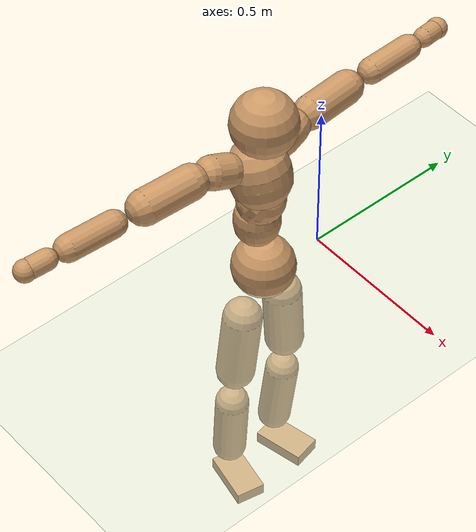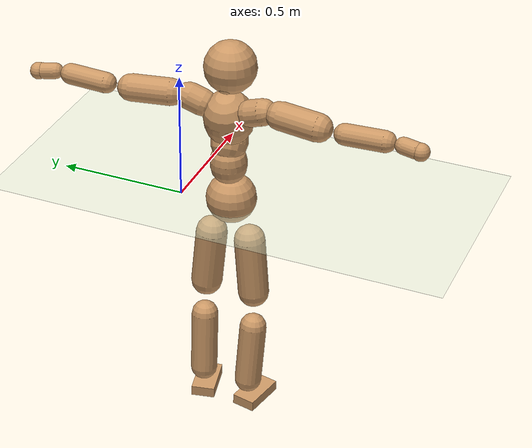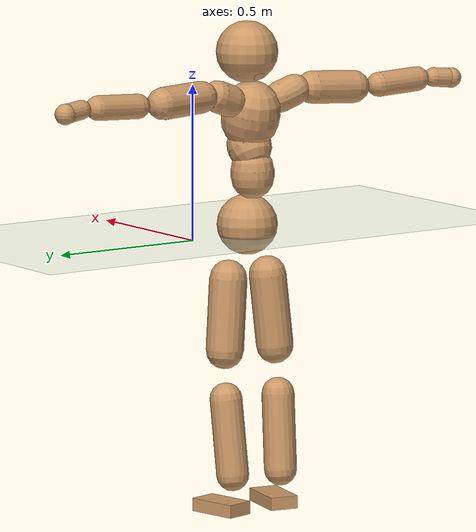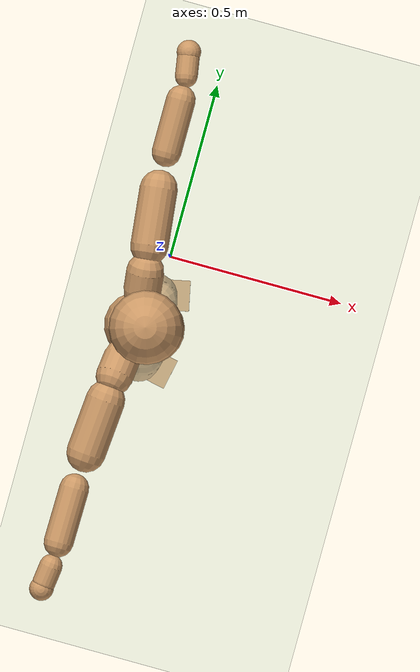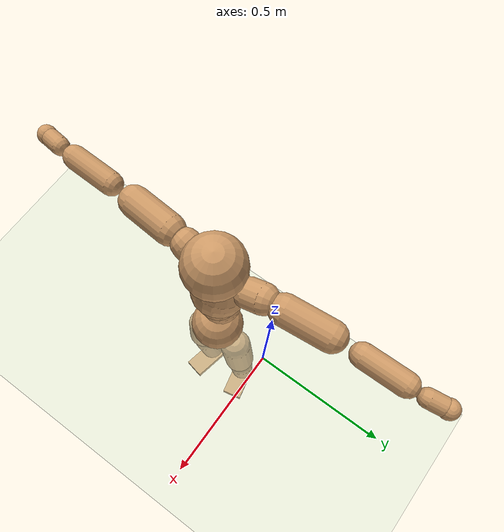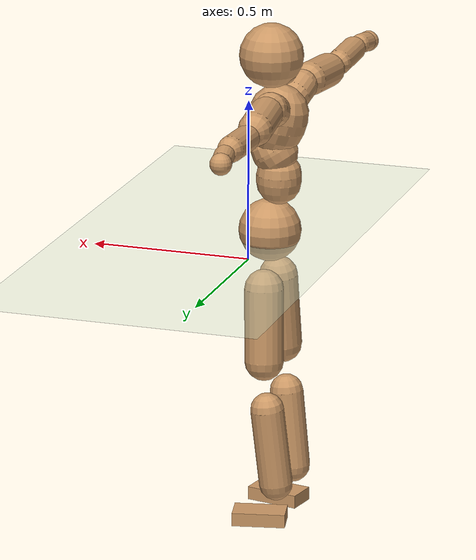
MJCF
<mujoco model="humanoid">
  <compiler coordinate="local"/>
  <default>
    <joint damping="0.0" armature="0.01" stiffness="0.0" limited="true"/>
    <geom conaffinity="1" condim="3" contype="7" margin="0.001" rgba="0.8 0.6 .4 1"/>
  </default>
  <asset>
    <texture type="skybox" builtin="gradient" rgb1=".4 .5 .6" rgb2="0 0 0" width="100" height="100"/>
    <texture builtin="flat" height="1278" mark="cross" markrgb="1 1 1" name="texgeom" random="0.01" rgb1="0.8 0.6 0.4" rgb2="0.8 0.6 0.4" type="cube" width="127"/>
    <texture builtin="checker" height="100" name="texplane" rgb1="0 0 0" rgb2="0.8 0.8 0.8" type="2d" width="100"/>
    <material name="MatPlane" reflectance="0.5" shininess="1" specular="1" texrepeat="60 60" texture="texplane"/>
    <material name="geom" texture="texgeom" texuniform="true"/>
  </asset>
  <worldbody>
    <light cutoff="100" diffuse="1 1 1" dir="-0 0 -1.3" directional="true" exponent="1" pos="0 0 1.3" specular=".1 .1 .1"/>
    <geom conaffinity="1" condim="3" name="floor" pos="0 0 0" rgba="0.8 0.9 0.8 1" size="100 100 .2" type="plane" material="MatPlane"/>
    <body name="Pelvis" pos="-0.0006 -0.211 0.0341">
      <freejoint name="Pelvis"/>
      <geom type="sphere" contype="1" conaffinity="1" density="500" size="0.0981" pos="0.0000 0.0000 0.0000" name="Pelvis"/>
      <body name="L_Hip" pos="-0.0041 0.0729 -0.093">
        <joint name="L_Hip_x" type="hinge" pos="0 0 0" axis="1 0 0" stiffness="800" damping="80" armature="0.02" range="-180.0000 180.0000"/>
        <joint name="L_Hip_y" type="hinge" pos="0 0 0" axis="0 1 0" stiffness="800" damping="80" armature="0.02" range="-180.0000 180.0000"/>
        <joint name="L_Hip_z" type="hinge" pos="0 0 0" axis="0 0 1" stiffness="800" damping="80" armature="0.02" range="-180.0000 180.0000"/>
        <geom type="capsule" contype="1" conaffinity="1" density="500" fromto="-0.0025 0.0062 -0.0763 -0.0099 0.0250 -0.3054" size="0.0615" name="L_Hip"/>
        <body name="L_Knee" pos="-0.0124 0.0312 -0.3817">
          <joint name="L_Knee_x" type="hinge" pos="0 0 0" axis="1 0 0" stiffness="800" damping="80" armature="0.02" range="-180.0000 180.0000"/>
          <joint name="L_Knee_y" type="hinge" pos="0 0 0" axis="0 1 0" stiffness="800" damping="80" armature="0.02" range="-180.0000 180.0000"/>
          <joint name="L_Knee_z" type="hinge" pos="0 0 0" axis="0 0 1" stiffness="800" damping="80" armature="0.02" range="-180.0000 180.0000"/>
          <geom type="capsule" contype="1" conaffinity="1" density="500" fromto="-0.0090 -0.0024 -0.0817 -0.0362 -0.0094 -0.3267" size="0.053" name="L_Knee"/>
          <body name="L_Ankle" pos="-0.0452 -0.0118 -0.4083">
            <joint name="L_Ankle_x" type="hinge" pos="0 0 0" axis="1 0 0" stiffness="800" damping="80" armature="0.02" range="-180.0000 180.0000"/>
            <joint name="L_Ankle_y" type="hinge" pos="0 0 0" axis="0 1 0" stiffness="800" damping="80" armature="0.02" range="-180.0000 180.0000"/>
            <joint name="L_Ankle_z" type="hinge" pos="0 0 0" axis="0 0 1" stiffness="800" damping="80" armature="0.02" range="-180.0000 180.0000"/>
            <geom type="box" contype="1" conaffinity="1" density="500" pos="0.0587 0.0125 -0.0291" size="0.0836 0.0466 0.0213" quat="0.9945 0.0000 0.0000 0.1048" name="L_Ankle"/>
            <body name="L_Toe" pos="0.1173 0.025 -0.0582">
              <joint name="L_Toe_x" type="hinge" pos="0 0 0" axis="1 0 0" stiffness="500" damping="50" armature="0.02" range="-180.0000 180.0000"/>
              <joint name="L_Toe_y" type="hinge" pos="0 0 0" axis="0 1 0" stiffness="500" damping="50" armature="0.02" range="-180.0000 180.0000"/>
              <joint name="L_Toe_z" type="hinge" pos="0 0 0" axis="0 0 1" stiffness="500" damping="50" armature="0.02" range="-180.0000 180.0000"/>
              <geom type="box" contype="1" conaffinity="1" density="500" pos="0.0000 0.0000 0.0282" size="0.001 0.0023 0.001" quat="0.9938 0.0000 0.0000 0.1110" name="L_Toe"/>
            </body>
          </body>
        </body>
      </body>
      <body name="R_Hip" pos="-0.0004 -0.0705 -0.0933">
        <joint name="R_Hip_x" type="hinge" pos="0 0 0" axis="1 0 0" stiffness="800" damping="80" armature="0.02" range="-180.0000 180.0000"/>
        <joint name="R_Hip_y" type="hinge" pos="0 0 0" axis="0 1 0" stiffness="800" damping="80" armature="0.02" range="-180.0000 180.0000"/>
        <joint name="R_Hip_z" type="hinge" pos="0 0 0" axis="0 0 1" stiffness="800" damping="80" armature="0.02" range="-180.0000 180.0000"/>
        <geom type="capsule" contype="1" conaffinity="1" density="500" fromto="-0.0028 -0.0076 -0.0774 -0.0112 -0.0302 -0.3096" size="0.0607" name="R_Hip"/>
        <body name="R_Knee" pos="-0.014 -0.0378 -0.387">
          <joint name="R_Knee_x" type="hinge" pos="0 0 0" axis="1 0 0" stiffness="800" damping="80" armature="0.02" range="-180.0000 180.0000"/>
          <joint name="R_Knee_y" type="hinge" pos="0 0 0" axis="0 1 0" stiffness="800" damping="80" armature="0.02" range="-180.0000 180.0000"/>
          <joint name="R_Knee_z" type="hinge" pos="0 0 0" axis="0 0 1" stiffness="800" damping="80" armature="0.02" range="-180.0000 180.0000"/>
          <geom type="capsule" contype="1" conaffinity="1" density="500" fromto="-0.0087 0.0029 -0.0819 -0.0349 0.0115 -0.3275" size="0.0531" name="R_Knee"/>
          <body name="R_Ankle" pos="-0.0436 0.0144 -0.4093">
            <joint name="R_Ankle_x" type="hinge" pos="0 0 0" axis="1 0 0" stiffness="800" damping="80" armature="0.02" range="-180.0000 180.0000"/>
            <joint name="R_Ankle_y" type="hinge" pos="0 0 0" axis="0 1 0" stiffness="800" damping="80" armature="0.02" range="-180.0000 180.0000"/>
            <joint name="R_Ankle_z" type="hinge" pos="0 0 0" axis="0 0 1" stiffness="800" damping="80" armature="0.02" range="-180.0000 180.0000"/>
            <geom type="box" contype="1" conaffinity="1" density="500" pos="0.0606 -0.0123 -0.0246" size="0.0856 0.047 0.021" quat="0.9950 0.0000 0.0000 -0.1000" name="R_Ankle"/>
            <body name="R_Toe" pos="0.1212 -0.0246 -0.0492">
              <joint name="R_Toe_x" type="hinge" pos="0 0 0" axis="1 0 0" stiffness="500" damping="50" armature="0.02" range="-180.0000 180.0000"/>
              <joint name="R_Toe_y" type="hinge" pos="0 0 0" axis="0 1 0" stiffness="500" damping="50" armature="0.02" range="-180.0000 180.0000"/>
              <joint name="R_Toe_z" type="hinge" pos="0 0 0" axis="0 0 1" stiffness="500" damping="50" armature="0.02" range="-180.0000 180.0000"/>
              <geom type="box" contype="1" conaffinity="1" density="500" pos="0.0000 0.0000 0.0264" size="0.0009 0.0023 0.0011" quat="0.9959 0.0000 0.0000 -0.0906" name="R_Toe"/>
            </body>
          </body>
        </body>
      </body>
      <body name="Torso" pos="-0.0272 -0.0023 0.1076">
        <joint name="Torso_x" type="hinge" pos="0 0 0" axis="1 0 0" stiffness="1000" damping="100" armature="0.02" range="-180.0000 180.0000"/>
        <joint name="Torso_y" type="hinge" pos="0 0 0" axis="0 1 0" stiffness="1000" damping="100" armature="0.02" range="-180.0000 180.0000"/>
        <joint name="Torso_z" type="hinge" pos="0 0 0" axis="0 0 1" stiffness="1000" damping="100" armature="0.02" range="-180.0000 180.0000"/>
        <geom type="capsule" contype="1" conaffinity="1" density="500" fromto="-0.0013 0.0019 0.0740 -0.0009 0.0013 0.0493" size="0.070401" name="Torso"/>
        <body name="Spine" pos="-0.0022 0.0032 0.1233">
          <joint name="Spine_x" type="hinge" pos="0 0 0" axis="1 0 0" stiffness="1000" damping="100" armature="0.02" range="-180.0000 180.0000"/>
          <joint name="Spine_y" type="hinge" pos="0 0 0" axis="0 1 0" stiffness="1000" damping="100" armature="0.02" range="-180.0000 180.0000"/>
          <joint name="Spine_z" type="hinge" pos="0 0 0" axis="0 0 1" stiffness="1000" damping="100" armature="0.02" range="-180.0000 180.0000"/>
          <geom type="capsule" contype="1" conaffinity="1" density="500" fromto="0.0184 0.0013 0.0298 0.0123 0.0009 0.0199" size="0.07161" name="Spine"/>
          <body name="Chest" pos="0.0307 0.0022 0.0497">
            <joint name="Chest_x" type="hinge" pos="0 0 0" axis="1 0 0" stiffness="1000" damping="100" armature="0.02" range="-180.0000 180.0000"/>
            <joint name="Chest_y" type="hinge" pos="0 0 0" axis="0 1 0" stiffness="1000" damping="100" armature="0.02" range="-180.0000 180.0000"/>
            <joint name="Chest_z" type="hinge" pos="0 0 0" axis="0 0 1" stiffness="1000" damping="100" armature="0.02" range="-180.0000 180.0000"/>
            <geom type="capsule" contype="1" conaffinity="1" density="500" fromto="-0.0289 -0.0007 0.0924 -0.0193 -0.0005 0.0616" size="0.094116" name="Chest"/>
            <body name="Neck" pos="-0.0562 -0.002 0.2165">
              <joint name="Neck_x" type="hinge" pos="0 0 0" axis="1 0 0" stiffness="500" damping="50" armature="0.02" range="-180.0000 180.0000"/>
              <joint name="Neck_y" type="hinge" pos="0 0 0" axis="0 1 0" stiffness="500" damping="50" armature="0.02" range="-180.0000 180.0000"/>
              <joint name="Neck_z" type="hinge" pos="0 0 0" axis="0 0 1" stiffness="500" damping="50" armature="0.02" range="-180.0000 180.0000"/>
              <geom type="capsule" contype="1" conaffinity="1" density="500" fromto="0.0101 0.0005 0.0122 0.0405 0.0018 0.0487" size="0.039432" name="Neck"/>
              <body name="Head" pos="0.0506 0.0023 0.0608">
                <joint name="Head_x" type="hinge" pos="0 0 0" axis="1 0 0" stiffness="500" damping="50" armature="0.02" range="-180.0000 180.0000"/>
                <joint name="Head_y" type="hinge" pos="0 0 0" axis="0 1 0" stiffness="500" damping="50" armature="0.02" range="-180.0000 180.0000"/>
                <joint name="Head_z" type="hinge" pos="0 0 0" axis="0 0 1" stiffness="500" damping="50" armature="0.02" range="-180.0000 180.0000"/>
                <geom type="sphere" contype="1" conaffinity="1" density="500" size="0.0997" pos="0.0000 0.0000 0.0000" name="Head"/>
              </body>
            </body>
            <body name="L_Thorax" pos="-0.0421 0.0779 0.1234">
              <joint name="L_Thorax_x" type="hinge" pos="0 0 0" axis="1 0 0" stiffness="500" damping="50" armature="0.02" range="-180.0000 180.0000"/>
              <joint name="L_Thorax_y" type="hinge" pos="0 0 0" axis="0 1 0" stiffness="500" damping="50" armature="0.02" range="-180.0000 180.0000"/>
              <joint name="L_Thorax_z" type="hinge" pos="0 0 0" axis="0 0 1" stiffness="500" damping="50" armature="0.02" range="-180.0000 180.0000"/>
              <geom type="capsule" contype="1" conaffinity="1" density="500" fromto="-0.0017 0.0169 0.0063 -0.0070 0.0676 0.0251" size="0.0516" name="L_Thorax"/>
              <body name="L_Shoulder" pos="-0.0087 0.0845 0.0313">
                <joint name="L_Shoulder_x" type="hinge" pos="0 0 0" axis="1 0 0" stiffness="500" damping="50" armature="0.02" range="-720.0000 720.0000"/>
                <joint name="L_Shoulder_y" type="hinge" pos="0 0 0" axis="0 1 0" stiffness="500" damping="50" armature="0.02" range="-720.0000 720.0000"/>
                <joint name="L_Shoulder_z" type="hinge" pos="0 0 0" axis="0 0 1" stiffness="500" damping="50" armature="0.02" range="-720.0000 720.0000"/>
                <geom type="capsule" contype="1" conaffinity="1" density="500" fromto="-0.0058 0.0520 -0.0021 -0.0231 0.2079 -0.0084" size="0.0519" name="L_Shoulder"/>
                <body name="L_Elbow" pos="-0.0289 0.2599 -0.0105">
                  <joint name="L_Elbow_x" type="hinge" pos="0 0 0" axis="1 0 0" stiffness="500" damping="50" armature="0.02" range="-720.0000 720.0000"/>
                  <joint name="L_Elbow_y" type="hinge" pos="0 0 0" axis="0 1 0" stiffness="500" damping="50" armature="0.02" range="-720.0000 720.0000"/>
                  <joint name="L_Elbow_z" type="hinge" pos="0 0 0" axis="0 0 1" stiffness="500" damping="50" armature="0.02" range="-720.0000 720.0000"/>
                  <geom type="capsule" contype="1" conaffinity="1" density="500" fromto="-0.0000 0.0489 0.0021 -0.0001 0.1956 0.0083" size="0.0398" name="L_Elbow"/>
                  <body name="L_Wrist" pos="-0.0002 0.2445 0.0103">
                    <joint name="L_Wrist_x" type="hinge" pos="0 0 0" axis="1 0 0" stiffness="300" damping="30" armature="0.02" range="-180.0000 180.0000"/>
                    <joint name="L_Wrist_y" type="hinge" pos="0 0 0" axis="0 1 0" stiffness="300" damping="30" armature="0.02" range="-180.0000 180.0000"/>
                    <joint name="L_Wrist_z" type="hinge" pos="0 0 0" axis="0 0 1" stiffness="300" damping="30" armature="0.02" range="-180.0000 180.0000"/>
                    <geom type="capsule" contype="1" conaffinity="1" density="500" fromto="-0.0027 0.0163 -0.0020 -0.0109 0.0654 -0.0078" size="0.0309" name="L_Wrist"/>
                    <body name="L_Hand" pos="-0.0136 0.0817 -0.0098">
                      <joint name="L_Hand_x" type="hinge" pos="0 0 0" axis="1 0 0" stiffness="300" damping="30" armature="0.02" range="-180.0000 180.0000"/>
                      <joint name="L_Hand_y" type="hinge" pos="0 0 0" axis="0 1 0" stiffness="300" damping="30" armature="0.02" range="-180.0000 180.0000"/>
                      <joint name="L_Hand_z" type="hinge" pos="0 0 0" axis="0 0 1" stiffness="300" damping="30" armature="0.02" range="-180.0000 180.0000"/>
                      <geom type="sphere" contype="1" conaffinity="1" density="500" size="0.0330" pos="0.0000 0.0000 0.0000" name="L_Hand"/>
                    </body>
                  </body>
                </body>
              </body>
            </body>
            <body name="R_Thorax" pos="-0.0462 -0.0796 0.122">
              <joint name="R_Thorax_x" type="hinge" pos="0 0 0" axis="1 0 0" stiffness="500" damping="50" armature="0.02" range="-180.0000 180.0000"/>
              <joint name="R_Thorax_y" type="hinge" pos="0 0 0" axis="0 1 0" stiffness="500" damping="50" armature="0.02" range="-180.0000 180.0000"/>
              <joint name="R_Thorax_z" type="hinge" pos="0 0 0" axis="0 0 1" stiffness="500" damping="50" armature="0.02" range="-180.0000 180.0000"/>
              <geom type="capsule" contype="1" conaffinity="1" density="500" fromto="-0.0019 -0.0175 0.0065 -0.0078 -0.0702 0.0261" size="0.0509" name="R_Thorax"/>
              <body name="R_Shoulder" pos="-0.0097 -0.0877 0.0326">
                <joint name="R_Shoulder_x" type="hinge" pos="0 0 0" axis="1 0 0" stiffness="500" damping="50" armature="0.02" range="-720.0000 720.0000"/>
                <joint name="R_Shoulder_y" type="hinge" pos="0 0 0" axis="0 1 0" stiffness="500" damping="50" armature="0.02" range="-720.0000 720.0000"/>
                <joint name="R_Shoulder_z" type="hinge" pos="0 0 0" axis="0 0 1" stiffness="500" damping="50" armature="0.02" range="-720.0000 720.0000"/>
                <geom type="capsule" contype="1" conaffinity="1" density="500" fromto="-0.0043 -0.0506 -0.0026 -0.0173 -0.2024 -0.0105" size="0.0535" name="R_Shoulder"/>
                <body name="R_Elbow" pos="-0.0217 -0.253 -0.0131">
                  <joint name="R_Elbow_x" type="hinge" pos="0 0 0" axis="1 0 0" stiffness="500" damping="50" armature="0.02" range="-720.0000 720.0000"/>
                  <joint name="R_Elbow_y" type="hinge" pos="0 0 0" axis="0 1 0" stiffness="500" damping="50" armature="0.02" range="-720.0000 720.0000"/>
                  <joint name="R_Elbow_z" type="hinge" pos="0 0 0" axis="0 0 1" stiffness="500" damping="50" armature="0.02" range="-720.0000 720.0000"/>
                  <geom type="capsule" contype="1" conaffinity="1" density="500" fromto="-0.0006 -0.0506 0.0023 -0.0025 -0.2023 0.0093" size="0.0402" name="R_Elbow"/>
                  <body name="R_Wrist" pos="-0.0032 -0.2528 0.0116">
                    <joint name="R_Wrist_x" type="hinge" pos="0 0 0" axis="1 0 0" stiffness="300" damping="30" armature="0.02" range="-180.0000 180.0000"/>
                    <joint name="R_Wrist_y" type="hinge" pos="0 0 0" axis="0 1 0" stiffness="300" damping="30" armature="0.02" range="-180.0000 180.0000"/>
                    <joint name="R_Wrist_z" type="hinge" pos="0 0 0" axis="0 0 1" stiffness="300" damping="30" armature="0.02" range="-180.0000 180.0000"/>
                    <geom type="capsule" contype="1" conaffinity="1" density="500" fromto="-0.0022 -0.0165 -0.0015 -0.0086 -0.0660 -0.0059" size="0.0317" name="R_Wrist"/>
                    <body name="R_Hand" pos="-0.0108 -0.0825 -0.0074">
                      <joint name="R_Hand_x" type="hinge" pos="0 0 0" axis="1 0 0" stiffness="300" damping="30" armature="0.02" range="-180.0000 180.0000"/>
                      <joint name="R_Hand_y" type="hinge" pos="0 0 0" axis="0 1 0" stiffness="300" damping="30" armature="0.02" range="-180.0000 180.0000"/>
                      <joint name="R_Hand_z" type="hinge" pos="0 0 0" axis="0 0 1" stiffness="300" damping="30" armature="0.02" range="-180.0000 180.0000"/>
                      <geom type="sphere" contype="1" conaffinity="1" density="500" size="0.0332" pos="0.0000 0.0000 0.0000" name="R_Hand"/>
                    </body>
                  </body>
                </body>
              </body>
            </body>
          </body>
        </body>
      </body>
    </body>
  </worldbody>
  <actuator>
    <motor name="L_Hip_x" joint="L_Hip_x" gear="500"/>
    <motor name="L_Hip_y" joint="L_Hip_y" gear="500"/>
    <motor name="L_Hip_z" joint="L_Hip_z" gear="500"/>
    <motor name="L_Knee_x" joint="L_Knee_x" gear="500"/>
    <motor name="L_Knee_y" joint="L_Knee_y" gear="500"/>
    <motor name="L_Knee_z" joint="L_Knee_z" gear="500"/>
    <motor name="L_Ankle_x" joint="L_Ankle_x" gear="500"/>
    <motor name="L_Ankle_y" joint="L_Ankle_y" gear="500"/>
    <motor name="L_Ankle_z" joint="L_Ankle_z" gear="500"/>
    <motor name="L_Toe_x" joint="L_Toe_x" gear="500"/>
    <motor name="L_Toe_y" joint="L_Toe_y" gear="500"/>
    <motor name="L_Toe_z" joint="L_Toe_z" gear="500"/>
    <motor name="R_Hip_x" joint="R_Hip_x" gear="500"/>
    <motor name="R_Hip_y" joint="R_Hip_y" gear="500"/>
    <motor name="R_Hip_z" joint="R_Hip_z" gear="500"/>
    <motor name="R_Knee_x" joint="R_Knee_x" gear="500"/>
    <motor name="R_Knee_y" joint="R_Knee_y" gear="500"/>
    <motor name="R_Knee_z" joint="R_Knee_z" gear="500"/>
    <motor name="R_Ankle_x" joint="R_Ankle_x" gear="500"/>
    <motor name="R_Ankle_y" joint="R_Ankle_y" gear="500"/>
    <motor name="R_Ankle_z" joint="R_Ankle_z" gear="500"/>
    <motor name="R_Toe_x" joint="R_Toe_x" gear="500"/>
    <motor name="R_Toe_y" joint="R_Toe_y" gear="500"/>
    <motor name="R_Toe_z" joint="R_Toe_z" gear="500"/>
    <motor name="Torso_x" joint="Torso_x" gear="500"/>
    <motor name="Torso_y" joint="Torso_y" gear="500"/>
    <motor name="Torso_z" joint="Torso_z" gear="500"/>
    <motor name="Spine_x" joint="Spine_x" gear="500"/>
    <motor name="Spine_y" joint="Spine_y" gear="500"/>
    <motor name="Spine_z" joint="Spine_z" gear="500"/>
    <motor name="Chest_x" joint="Chest_x" gear="500"/>
    <motor name="Chest_y" joint="Chest_y" gear="500"/>
    <motor name="Chest_z" joint="Chest_z" gear="500"/>
    <motor name="Neck_x" joint="Neck_x" gear="500"/>
    <motor name="Neck_y" joint="Neck_y" gear="500"/>
    <motor name="Neck_z" joint="Neck_z" gear="500"/>
    <motor name="Head_x" joint="Head_x" gear="500"/>
    <motor name="Head_y" joint="Head_y" gear="500"/>
    <motor name="Head_z" joint="Head_z" gear="500"/>
    <motor name="L_Thorax_x" joint="L_Thorax_x" gear="500"/>
    <motor name="L_Thorax_y" joint="L_Thorax_y" gear="500"/>
    <motor name="L_Thorax_z" joint="L_Thorax_z" gear="500"/>
    <motor name="L_Shoulder_x" joint="L_Shoulder_x" gear="500"/>
    <motor name="L_Shoulder_y" joint="L_Shoulder_y" gear="500"/>
    <motor name="L_Shoulder_z" joint="L_Shoulder_z" gear="500"/>
    <motor name="L_Elbow_x" joint="L_Elbow_x" gear="500"/>
    <motor name="L_Elbow_y" joint="L_Elbow_y" gear="500"/>
    <motor name="L_Elbow_z" joint="L_Elbow_z" gear="500"/>
    <motor name="L_Wrist_x" joint="L_Wrist_x" gear="500"/>
    <motor name="L_Wrist_y" joint="L_Wrist_y" gear="500"/>
    <motor name="L_Wrist_z" joint="L_Wrist_z" gear="500"/>
    <motor name="L_Hand_x" joint="L_Hand_x" gear="500"/>
    <motor name="L_Hand_y" joint="L_Hand_y" gear="500"/>
    <motor name="L_Hand_z" joint="L_Hand_z" gear="500"/>
    <motor name="R_Thorax_x" joint="R_Thorax_x" gear="500"/>
    <motor name="R_Thorax_y" joint="R_Thorax_y" gear="500"/>
    <motor name="R_Thorax_z" joint="R_Thorax_z" gear="500"/>
    <motor name="R_Shoulder_x" joint="R_Shoulder_x" gear="500"/>
    <motor name="R_Shoulder_y" joint="R_Shoulder_y" gear="500"/>
    <motor name="R_Shoulder_z" joint="R_Shoulder_z" gear="500"/>
    <motor name="R_Elbow_x" joint="R_Elbow_x" gear="500"/>
    <motor name="R_Elbow_y" joint="R_Elbow_y" gear="500"/>
    <motor name="R_Elbow_z" joint="R_Elbow_z" gear="500"/>
    <motor name="R_Wrist_x" joint="R_Wrist_x" gear="500"/>
    <motor name="R_Wrist_y" joint="R_Wrist_y" gear="500"/>
    <motor name="R_Wrist_z" joint="R_Wrist_z" gear="500"/>
    <motor name="R_Hand_x" joint="R_Hand_x" gear="500"/>
    <motor name="R_Hand_y" joint="R_Hand_y" gear="500"/>
    <motor name="R_Hand_z" joint="R_Hand_z" gear="500"/>
  </actuator>
  <contact>
    <exclude body1="Torso" body2="Chest"/>
    <exclude body1="Head" body2="Chest"/>
    <exclude body1="R_Knee" body2="R_Toe"/>
    <exclude body1="R_Knee" body2="L_Ankle"/>
    <exclude body1="R_Knee" body2="L_Toe"/>
    <exclude body1="L_Knee" body2="L_Toe"/>
    <exclude body1="L_Knee" body2="R_Ankle"/>
    <exclude body1="L_Knee" body2="R_Toe"/>
    <exclude body1="L_Shoulder" body2="Chest"/>
    <exclude body1="R_Shoulder" body2="Chest"/>
  </contact>
  <sensor/>
  <size njmax="700" nconmax="700"/>
</mujoco>
